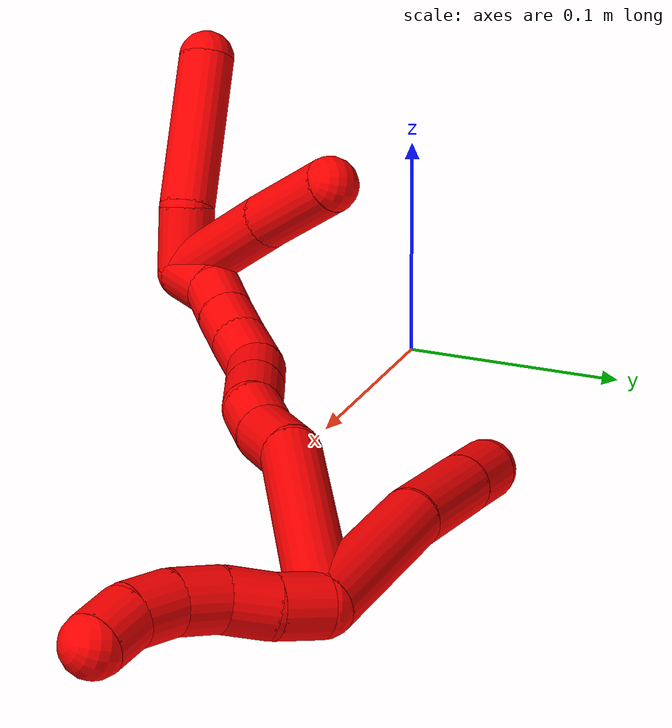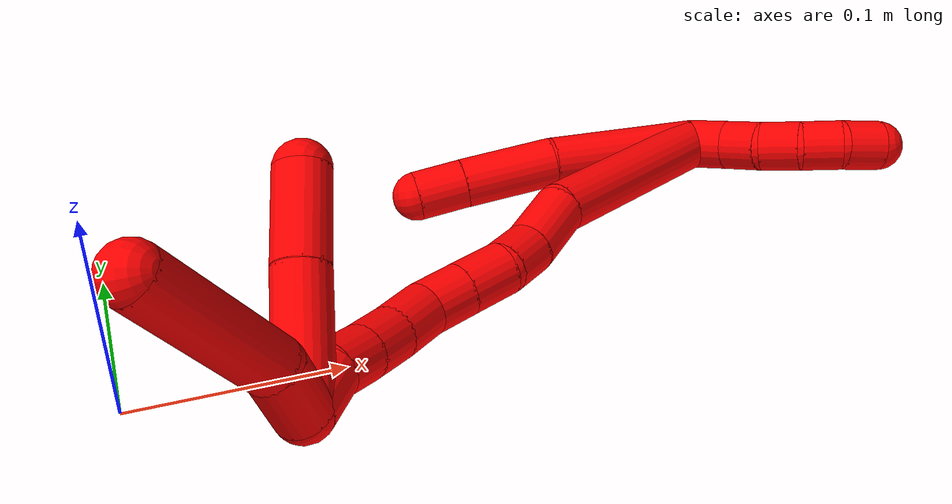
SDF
<sdf version="1.7">
 <world name="default">
  <model name="2">
   <static>0</static>
   <link name="2">
    <collision name="collision-cylinder-e_1_2_8">
     <pose>-0.023614 -0.005495 -0.030131 2.96122 -0.656796 -2.62274</pose>
     <geometry><cylinder><radius>0.0125</radius><length>0.077349</length></cylinder></geometry>
     <surface>
      <friction><ode><mu>1.16</mu><mu2>1.16</mu2><slip1>0</slip1><slip2>0</slip2></ode></friction>
      <contact><ode><kp>1e+06</kp><kd>1</kd><max_vel>0</max_vel><min_depth>0.001</min_depth></ode></contact>
     </surface>
    </collision>
    <visual name="visual-cylinder-e_1_2_8">
     <pose>-0.023614 -0.005495 -0.030131 2.96122 -0.656796 -2.62274</pose>
     <geometry><cylinder><radius>0.0125</radius><length>0.077349</length></cylinder></geometry>
     <material><ambient>1 0 0 1</ambient></material>
    </visual>
    <collision name="collision-cylinder-e_2_8_9">
     <pose>-0.059513 -0.016392 -0.079952 2.87379 -0.541668 -2.23818</pose>
     <geometry><cylinder><radius>0.0125</radius><length>0.047656</length></cylinder></geometry>
     <surface>
      <friction><ode><mu>1.16</mu><mu2>1.16</mu2><slip1>0</slip1><slip2>0</slip2></ode></friction>
      <contact><ode><kp>1e+06</kp><kd>1</kd><max_vel>0</max_vel><min_depth>0.001</min_depth></ode></contact>
     </surface>
    </collision>
    <visual name="visual-cylinder-e_2_8_9">
     <pose>-0.059513 -0.016392 -0.079952 2.87379 -0.541668 -2.23818</pose>
     <geometry><cylinder><radius>0.0125</radius><length>0.047656</length></cylinder></geometry>
     <material><ambient>1 0 0 1</ambient></material>
    </visual>
    <collision name="collision-cylinder-e_3_9_6">
     <pose>-0.078136 -0.024926 -0.109947 2.84661 -0.531881 -2.14295</pose>
     <geometry><cylinder><radius>0.0125</radius><length>0.024996</length></cylinder></geometry>
     <surface>
      <friction><ode><mu>1.16</mu><mu2>1.16</mu2><slip1>0</slip1><slip2>0</slip2></ode></friction>
      <contact><ode><kp>1e+06</kp><kd>1</kd><max_vel>0</max_vel><min_depth>0.001</min_depth></ode></contact>
     </surface>
    </collision>
    <visual name="visual-cylinder-e_3_9_6">
     <pose>-0.078136 -0.024926 -0.109947 2.84661 -0.531881 -2.14295</pose>
     <geometry><cylinder><radius>0.0125</radius><length>0.024996</length></cylinder></geometry>
     <material><ambient>1 0 0 1</ambient></material>
    </visual>
    <collision name="collision-cylinder-e_1_2_10">
     <pose>0.000204 -0.001841 0.009827 0.185155 0.020434 0.001897</pose>
     <geometry><cylinder><radius>0.0125</radius><length>0.02</length></cylinder></geometry>
     <surface>
      <friction><ode><mu>1.16</mu><mu2>1.16</mu2><slip1>0</slip1><slip2>0</slip2></ode></friction>
      <contact><ode><kp>1e+06</kp><kd>1</kd><max_vel>0</max_vel><min_depth>0.001</min_depth></ode></contact>
     </surface>
    </collision>
    <visual name="visual-cylinder-e_1_2_10">
     <pose>0.000204 -0.001841 0.009827 0.185155 0.020434 0.001897</pose>
     <geometry><cylinder><radius>0.0125</radius><length>0.02</length></cylinder></geometry>
     <material><ambient>1 0 0 1</ambient></material>
    </visual>
    <collision name="collision-cylinder-e_2_10_11">
     <pose>-0.001303 -0.005932 0.029246 0.230441 -0.171982 -0.019953</pose>
     <geometry><cylinder><radius>0.0125</radius><length>0.02</length></cylinder></geometry>
     <surface>
      <friction><ode><mu>1.16</mu><mu2>1.16</mu2><slip1>0</slip1><slip2>0</slip2></ode></friction>
      <contact><ode><kp>1e+06</kp><kd>1</kd><max_vel>0</max_vel><min_depth>0.001</min_depth></ode></contact>
     </surface>
    </collision>
    <visual name="visual-cylinder-e_2_10_11">
     <pose>-0.001303 -0.005932 0.029246 0.230441 -0.171982 -0.019953</pose>
     <geometry><cylinder><radius>0.0125</radius><length>0.02</length></cylinder></geometry>
     <material><ambient>1 0 0 1</ambient></material>
    </visual>
    <collision name="collision-cylinder-e_3_11_12">
     <pose>-0.002114 -0.009442 0.048718 0.126811 0.090165 0.005729</pose>
     <geometry><cylinder><radius>0.0125</radius><length>0.02</length></cylinder></geometry>
     <surface>
      <friction><ode><mu>1.16</mu><mu2>1.16</mu2><slip1>0</slip1><slip2>0</slip2></ode></friction>
      <contact><ode><kp>1e+06</kp><kd>1</kd><max_vel>0</max_vel><min_depth>0.001</min_depth></ode></contact>
     </surface>
    </collision>
    <visual name="visual-cylinder-e_3_11_12">
     <pose>-0.002114 -0.009442 0.048718 0.126811 0.090165 0.005729</pose>
     <geometry><cylinder><radius>0.0125</radius><length>0.02</length></cylinder></geometry>
     <material><ambient>1 0 0 1</ambient></material>
    </visual>
    <collision name="collision-cylinder-e_4_12_13">
     <pose>0.00209 -0.011165 0.068024 0.049219 0.336625 0.008365</pose>
     <geometry><cylinder><radius>0.0125</radius><length>0.02</length></cylinder></geometry>
     <surface>
      <friction><ode><mu>1.16</mu><mu2>1.16</mu2><slip1>0</slip1><slip2>0</slip2></ode></friction>
      <contact><ode><kp>1e+06</kp><kd>1</kd><max_vel>0</max_vel><min_depth>0.001</min_depth></ode></contact>
     </surface>
    </collision>
    <visual name="visual-cylinder-e_4_12_13">
     <pose>0.00209 -0.011165 0.068024 0.049219 0.336625 0.008365</pose>
     <geometry><cylinder><radius>0.0125</radius><length>0.02</length></cylinder></geometry>
     <material><ambient>1 0 0 1</ambient></material>
    </visual>
    <collision name="collision-cylinder-e_5_13_5">
     <pose>0.011424 -0.011638 0.085428 0.000984 0.647378 0.00033</pose>
     <geometry><cylinder><radius>0.0125</radius><length>0.02</length></cylinder></geometry>
     <surface>
      <friction><ode><mu>1.16</mu><mu2>1.16</mu2><slip1>0</slip1><slip2>0</slip2></ode></friction>
      <contact><ode><kp>1e+06</kp><kd>1</kd><max_vel>0</max_vel><min_depth>0.001</min_depth></ode></contact>
     </surface>
    </collision>
    <visual name="visual-cylinder-e_5_13_5">
     <pose>0.011424 -0.011638 0.085428 0.000984 0.647378 0.00033</pose>
     <geometry><cylinder><radius>0.0125</radius><length>0.02</length></cylinder></geometry>
     <material><ambient>1 0 0 1</ambient></material>
    </visual>
    <collision name="collision-cylinder-e_1_2_14">
     <pose>-0.04566 -0.023397 -0.019312 2.26084 -0.984341 -1.69954</pose>
     <geometry><cylinder><radius>0.0125</radius><length>0.10964</length></cylinder></geometry>
     <surface>
      <friction><ode><mu>1.16</mu><mu2>1.16</mu2><slip1>0</slip1><slip2>0</slip2></ode></friction>
      <contact><ode><kp>1e+06</kp><kd>1</kd><max_vel>0</max_vel><min_depth>0.001</min_depth></ode></contact>
     </surface>
    </collision>
    <visual name="visual-cylinder-e_1_2_14">
     <pose>-0.04566 -0.023397 -0.019312 2.26084 -0.984341 -1.69954</pose>
     <geometry><cylinder><radius>0.0125</radius><length>0.10964</length></cylinder></geometry>
     <material><ambient>1 0 0 1</ambient></material>
    </visual>
    <collision name="collision-cylinder-e_2_14_15">
     <pose>-0.102364 -0.057728 -0.042105 1.87899 -0.766322 -1.00773</pose>
     <geometry><cylinder><radius>0.0125</radius><length>0.031851</length></cylinder></geometry>
     <surface>
      <friction><ode><mu>1.16</mu><mu2>1.16</mu2><slip1>0</slip1><slip2>0</slip2></ode></friction>
      <contact><ode><kp>1e+06</kp><kd>1</kd><max_vel>0</max_vel><min_depth>0.001</min_depth></ode></contact>
     </surface>
    </collision>
    <visual name="visual-cylinder-e_2_14_15">
     <pose>-0.102364 -0.057728 -0.042105 1.87899 -0.766322 -1.00773</pose>
     <geometry><cylinder><radius>0.0125</radius><length>0.031851</length></cylinder></geometry>
     <material><ambient>1 0 0 1</ambient></material>
    </visual>
    <collision name="collision-cylinder-e_3_15_16">
     <pose>-0.122477 -0.07432 -0.048014 1.97612 -0.974259 -1.35398</pose>
     <geometry><cylinder><radius>0.0125</radius><length>0.021925</length></cylinder></geometry>
     <surface>
      <friction><ode><mu>1.16</mu><mu2>1.16</mu2><slip1>0</slip1><slip2>0</slip2></ode></friction>
      <contact><ode><kp>1e+06</kp><kd>1</kd><max_vel>0</max_vel><min_depth>0.001</min_depth></ode></contact>
     </surface>
    </collision>
    <visual name="visual-cylinder-e_3_15_16">
     <pose>-0.122477 -0.07432 -0.048014 1.97612 -0.974259 -1.35398</pose>
     <geometry><cylinder><radius>0.0125</radius><length>0.021925</length></cylinder></geometry>
     <material><ambient>1 0 0 1</ambient></material>
    </visual>
    <collision name="collision-cylinder-e_4_16_17">
     <pose>-0.140353 -0.085314 -0.056483 2.41822 -0.829676 -1.72213</pose>
     <geometry><cylinder><radius>0.0125</radius><length>0.023874</length></cylinder></geometry>
     <surface>
      <friction><ode><mu>1.16</mu><mu2>1.16</mu2><slip1>0</slip1><slip2>0</slip2></ode></friction>
      <contact><ode><kp>1e+06</kp><kd>1</kd><max_vel>0</max_vel><min_depth>0.001</min_depth></ode></contact>
     </surface>
    </collision>
    <visual name="visual-cylinder-e_4_16_17">
     <pose>-0.140353 -0.085314 -0.056483 2.41822 -0.829676 -1.72213</pose>
     <geometry><cylinder><radius>0.0125</radius><length>0.023874</length></cylinder></geometry>
     <material><ambient>1 0 0 1</ambient></material>
    </visual>
    <collision name="collision-cylinder-e_5_17_18">
     <pose>-0.156905 -0.095378 -0.067707 2.40194 -0.834767 -1.70481</pose>
     <geometry><cylinder><radius>0.0125</radius><length>0.020903</length></cylinder></geometry>
     <surface>
      <friction><ode><mu>1.16</mu><mu2>1.16</mu2><slip1>0</slip1><slip2>0</slip2></ode></friction>
      <contact><ode><kp>1e+06</kp><kd>1</kd><max_vel>0</max_vel><min_depth>0.001</min_depth></ode></contact>
     </surface>
    </collision>
    <visual name="visual-cylinder-e_5_17_18">
     <pose>-0.156905 -0.095378 -0.067707 2.40194 -0.834767 -1.70481</pose>
     <geometry><cylinder><radius>0.0125</radius><length>0.020903</length></cylinder></geometry>
     <material><ambient>1 0 0 1</ambient></material>
    </visual>
    <collision name="collision-cylinder-e_6_18_19">
     <pose>-0.174939 -0.106177 -0.075015 1.90752 -1.01213 -1.32632</pose>
     <geometry><cylinder><radius>0.0125</radius><length>0.024267</length></cylinder></geometry>
     <surface>
      <friction><ode><mu>1.16</mu><mu2>1.16</mu2><slip1>0</slip1><slip2>0</slip2></ode></friction>
      <contact><ode><kp>1e+06</kp><kd>1</kd><max_vel>0</max_vel><min_depth>0.001</min_depth></ode></contact>
     </surface>
    </collision>
    <visual name="visual-cylinder-e_6_18_19">
     <pose>-0.174939 -0.106177 -0.075015 1.90752 -1.01213 -1.32632</pose>
     <geometry><cylinder><radius>0.0125</radius><length>0.024267</length></cylinder></geometry>
     <material><ambient>1 0 0 1</ambient></material>
    </visual>
    <collision name="collision-cylinder-e_7_19_20">
     <pose>-0.194695 -0.116873 -0.078501 1.85693 -1.09975 -1.37272</pose>
     <geometry><cylinder><radius>0.0125</radius><length>0.021248</length></cylinder></geometry>
     <surface>
      <friction><ode><mu>1.16</mu><mu2>1.16</mu2><slip1>0</slip1><slip2>0</slip2></ode></friction>
      <contact><ode><kp>1e+06</kp><kd>1</kd><max_vel>0</max_vel><min_depth>0.001</min_depth></ode></contact>
     </surface>
    </collision>
    <visual name="visual-cylinder-e_7_19_20">
     <pose>-0.194695 -0.116873 -0.078501 1.85693 -1.09975 -1.37272</pose>
     <geometry><cylinder><radius>0.0125</radius><length>0.021248</length></cylinder></geometry>
     <material><ambient>1 0 0 1</ambient></material>
    </visual>
    <collision name="collision-cylinder-e_8_20_21">
     <pose>-0.213567 -0.125652 -0.081261 1.89569 -1.13466 -1.45119</pose>
     <geometry><cylinder><radius>0.0125</radius><length>0.020754</length></cylinder></geometry>
     <surface>
      <friction><ode><mu>1.16</mu><mu2>1.16</mu2><slip1>0</slip1><slip2>0</slip2></ode></friction>
      <contact><ode><kp>1e+06</kp><kd>1</kd><max_vel>0</max_vel><min_depth>0.001</min_depth></ode></contact>
     </surface>
    </collision>
    <visual name="visual-cylinder-e_8_20_21">
     <pose>-0.213567 -0.125652 -0.081261 1.89569 -1.13466 -1.45119</pose>
     <geometry><cylinder><radius>0.0125</radius><length>0.020754</length></cylinder></geometry>
     <material><ambient>1 0 0 1</ambient></material>
    </visual>
    <collision name="collision-cylinder-e_9_21_1">
     <pose>-0.232506 -0.138299 -0.08244 1.5449 -0.84297 -0.8238</pose>
     <geometry><cylinder><radius>0.0125</radius><length>0.025539</length></cylinder></geometry>
     <surface>
      <friction><ode><mu>1.16</mu><mu2>1.16</mu2><slip1>0</slip1><slip2>0</slip2></ode></friction>
      <contact><ode><kp>1e+06</kp><kd>1</kd><max_vel>0</max_vel><min_depth>0.001</min_depth></ode></contact>
     </surface>
    </collision>
    <visual name="visual-cylinder-e_9_21_1">
     <pose>-0.232506 -0.138299 -0.08244 1.5449 -0.84297 -0.8238</pose>
     <geometry><cylinder><radius>0.0125</radius><length>0.025539</length></cylinder></geometry>
     <material><ambient>1 0 0 1</ambient></material>
    </visual>
    <collision name="collision-cylinder-e_1_1_22">
     <pose>-0.238665 -0.118224 -0.084817 -1.66144 0.117143 -0.128243</pose>
     <geometry><cylinder><radius>0.0125</radius><length>0.057765</length></cylinder></geometry>
     <surface>
      <friction><ode><mu>1.16</mu><mu2>1.16</mu2><slip1>0</slip1><slip2>0</slip2></ode></friction>
      <contact><ode><kp>1e+06</kp><kd>1</kd><max_vel>0</max_vel><min_depth>0.001</min_depth></ode></contact>
     </surface>
    </collision>
    <visual name="visual-cylinder-e_1_1_22">
     <pose>-0.238665 -0.118224 -0.084817 -1.66144 0.117143 -0.128243</pose>
     <geometry><cylinder><radius>0.0125</radius><length>0.057765</length></cylinder></geometry>
     <material><ambient>1 0 0 1</ambient></material>
    </visual>
    <collision name="collision-cylinder-e_2_22_4">
     <pose>-0.23189 -0.068896 -0.089244 -1.65875 0.161663 -0.176473</pose>
     <geometry><cylinder><radius>0.0125</radius><length>0.042235</length></cylinder></geometry>
     <surface>
      <friction><ode><mu>1.16</mu><mu2>1.16</mu2><slip1>0</slip1><slip2>0</slip2></ode></friction>
      <contact><ode><kp>1e+06</kp><kd>1</kd><max_vel>0</max_vel><min_depth>0.001</min_depth></ode></contact>
     </surface>
    </collision>
    <visual name="visual-cylinder-e_2_22_4">
     <pose>-0.23189 -0.068896 -0.089244 -1.65875 0.161663 -0.176473</pose>
     <geometry><cylinder><radius>0.0125</radius><length>0.042235</length></cylinder></geometry>
     <material><ambient>1 0 0 1</ambient></material>
    </visual>
    <collision name="collision-cylinder-e_1_1_23">
     <pose>-0.254071 -0.139166 -0.080326 -1.32732 -0.992266 0.800831</pose>
     <geometry><cylinder><radius>0.0125</radius><length>0.028737</length></cylinder></geometry>
     <surface>
      <friction><ode><mu>1.16</mu><mu2>1.16</mu2><slip1>0</slip1><slip2>0</slip2></ode></friction>
      <contact><ode><kp>1e+06</kp><kd>1</kd><max_vel>0</max_vel><min_depth>0.001</min_depth></ode></contact>
     </surface>
    </collision>
    <visual name="visual-cylinder-e_1_1_23">
     <pose>-0.254071 -0.139166 -0.080326 -1.32732 -0.992266 0.800831</pose>
     <geometry><cylinder><radius>0.0125</radius><length>0.028737</length></cylinder></geometry>
     <material><ambient>1 0 0 1</ambient></material>
    </visual>
    <collision name="collision-cylinder-e_2_23_3">
     <pose>-0.299077 -0.118639 -0.082403 -1.86935 -1.18223 1.4753</pose>
     <geometry><cylinder><radius>0.0125</radius><length>0.071263</length></cylinder></geometry>
     <surface>
      <friction><ode><mu>1.16</mu><mu2>1.16</mu2><slip1>0</slip1><slip2>0</slip2></ode></friction>
      <contact><ode><kp>1e+06</kp><kd>1</kd><max_vel>0</max_vel><min_depth>0.001</min_depth></ode></contact>
     </surface>
    </collision>
    <visual name="visual-cylinder-e_2_23_3">
     <pose>-0.299077 -0.118639 -0.082403 -1.86935 -1.18223 1.4753</pose>
     <geometry><cylinder><radius>0.0125</radius><length>0.071263</length></cylinder></geometry>
     <material><ambient>1 0 0 1</ambient></material>
    </visual>
    <collision name="collision-sphere-3">
     <pose>-0.332052 -0.105737 -0.086373 0 -0 0</pose>
     <geometry><sphere><radius>0.0125</radius></sphere></geometry>
     <surface>
      <friction><ode><mu>1.16</mu><mu2>1.16</mu2><slip1>0</slip1><slip2>0</slip2></ode></friction>
      <contact><ode><kp>1e+06</kp><kd>1</kd><max_vel>0</max_vel><min_depth>0.001</min_depth></ode></contact>
     </surface>
    </collision>
    <visual name="visual-sphere-3">
     <pose>-0.332052 -0.105737 -0.086373 0 -0 0</pose>
     <geometry><sphere><radius>0.0125</radius></sphere></geometry>
     <material><ambient>1 0 0 1</ambient></material>
    </visual>
    <collision name="collision-sphere-23">
     <pose>-0.266101 -0.131541 -0.078432 0 -0 0</pose>
     <geometry><sphere><radius>0.0125</radius></sphere></geometry>
     <surface>
      <friction><ode><mu>1.16</mu><mu2>1.16</mu2><slip1>0</slip1><slip2>0</slip2></ode></friction>
      <contact><ode><kp>1e+06</kp><kd>1</kd><max_vel>0</max_vel><min_depth>0.001</min_depth></ode></contact>
     </surface>
    </collision>
    <visual name="visual-sphere-23">
     <pose>-0.266101 -0.131541 -0.078432 0 -0 0</pose>
     <geometry><sphere><radius>0.0125</radius></sphere></geometry>
     <material><ambient>1 0 0 1</ambient></material>
    </visual>
    <collision name="collision-sphere-4">
     <pose>-0.228491 -0.048134 -0.091075 0 -0 0</pose>
     <geometry><sphere><radius>0.0125</radius></sphere></geometry>
     <surface>
      <friction><ode><mu>1.16</mu><mu2>1.16</mu2><slip1>0</slip1><slip2>0</slip2></ode></friction>
      <contact><ode><kp>1e+06</kp><kd>1</kd><max_vel>0</max_vel><min_depth>0.001</min_depth></ode></contact>
     </surface>
    </collision>
    <visual name="visual-sphere-4">
     <pose>-0.228491 -0.048134 -0.091075 0 -0 0</pose>
     <geometry><sphere><radius>0.0125</radius></sphere></geometry>
     <material><ambient>1 0 0 1</ambient></material>
    </visual>
    <collision name="collision-sphere-22">
     <pose>-0.235289 -0.089657 -0.087413 0 -0 0</pose>
     <geometry><sphere><radius>0.0125</radius></sphere></geometry>
     <surface>
      <friction><ode><mu>1.16</mu><mu2>1.16</mu2><slip1>0</slip1><slip2>0</slip2></ode></friction>
      <contact><ode><kp>1e+06</kp><kd>1</kd><max_vel>0</max_vel><min_depth>0.001</min_depth></ode></contact>
     </surface>
    </collision>
    <visual name="visual-sphere-22">
     <pose>-0.235289 -0.089657 -0.087413 0 -0 0</pose>
     <geometry><sphere><radius>0.0125</radius></sphere></geometry>
     <material><ambient>1 0 0 1</ambient></material>
    </visual>
    <collision name="collision-sphere-1">
     <pose>-0.242041 -0.146791 -0.08222 0 -0 0</pose>
     <geometry><sphere><radius>0.0125</radius></sphere></geometry>
     <surface>
      <friction><ode><mu>1.16</mu><mu2>1.16</mu2><slip1>0</slip1><slip2>0</slip2></ode></friction>
      <contact><ode><kp>1e+06</kp><kd>1</kd><max_vel>0</max_vel><min_depth>0.001</min_depth></ode></contact>
     </surface>
    </collision>
    <visual name="visual-sphere-1">
     <pose>-0.242041 -0.146791 -0.08222 0 -0 0</pose>
     <geometry><sphere><radius>0.0125</radius></sphere></geometry>
     <material><ambient>1 0 0 1</ambient></material>
    </visual>
    <collision name="collision-sphere-21">
     <pose>-0.222972 -0.129806 -0.08266 0 -0 0</pose>
     <geometry><sphere><radius>0.0125</radius></sphere></geometry>
     <surface>
      <friction><ode><mu>1.16</mu><mu2>1.16</mu2><slip1>0</slip1><slip2>0</slip2></ode></friction>
      <contact><ode><kp>1e+06</kp><kd>1</kd><max_vel>0</max_vel><min_depth>0.001</min_depth></ode></contact>
     </surface>
    </collision>
    <visual name="visual-sphere-21">
     <pose>-0.222972 -0.129806 -0.08266 0 -0 0</pose>
     <geometry><sphere><radius>0.0125</radius></sphere></geometry>
     <material><ambient>1 0 0 1</ambient></material>
    </visual>
    <collision name="collision-sphere-11">
     <pose>-0.003014 -0.008182 0.038838 0 -0 0</pose>
     <geometry><sphere><radius>0.0125</radius></sphere></geometry>
     <surface>
      <friction><ode><mu>1.16</mu><mu2>1.16</mu2><slip1>0</slip1><slip2>0</slip2></ode></friction>
      <contact><ode><kp>1e+06</kp><kd>1</kd><max_vel>0</max_vel><min_depth>0.001</min_depth></ode></contact>
     </surface>
    </collision>
    <visual name="visual-sphere-11">
     <pose>-0.003014 -0.008182 0.038838 0 -0 0</pose>
     <geometry><sphere><radius>0.0125</radius></sphere></geometry>
     <material><ambient>1 0 0 1</ambient></material>
    </visual>
    <collision name="collision-sphere-10">
     <pose>0.000409 -0.003681 0.019654 0 -0 0</pose>
     <geometry><sphere><radius>0.0125</radius></sphere></geometry>
     <surface>
      <friction><ode><mu>1.16</mu><mu2>1.16</mu2><slip1>0</slip1><slip2>0</slip2></ode></friction>
      <contact><ode><kp>1e+06</kp><kd>1</kd><max_vel>0</max_vel><min_depth>0.001</min_depth></ode></contact>
     </surface>
    </collision>
    <visual name="visual-sphere-10">
     <pose>0.000409 -0.003681 0.019654 0 -0 0</pose>
     <geometry><sphere><radius>0.0125</radius></sphere></geometry>
     <material><ambient>1 0 0 1</ambient></material>
    </visual>
    <collision name="collision-sphere-6">
     <pose>-0.084474 -0.028057 -0.120253 0 -0 0</pose>
     <geometry><sphere><radius>0.0125</radius></sphere></geometry>
     <surface>
      <friction><ode><mu>1.16</mu><mu2>1.16</mu2><slip1>0</slip1><slip2>0</slip2></ode></friction>
      <contact><ode><kp>1e+06</kp><kd>1</kd><max_vel>0</max_vel><min_depth>0.001</min_depth></ode></contact>
     </surface>
    </collision>
    <visual name="visual-sphere-6">
     <pose>-0.084474 -0.028057 -0.120253 0 -0 0</pose>
     <geometry><sphere><radius>0.0125</radius></sphere></geometry>
     <material><ambient>1 0 0 1</ambient></material>
    </visual>
    <collision name="collision-sphere-9">
     <pose>-0.071797 -0.021795 -0.099641 0 -0 0</pose>
     <geometry><sphere><radius>0.0125</radius></sphere></geometry>
     <surface>
      <friction><ode><mu>1.16</mu><mu2>1.16</mu2><slip1>0</slip1><slip2>0</slip2></ode></friction>
      <contact><ode><kp>1e+06</kp><kd>1</kd><max_vel>0</max_vel><min_depth>0.001</min_depth></ode></contact>
     </surface>
    </collision>
    <visual name="visual-sphere-9">
     <pose>-0.071797 -0.021795 -0.099641 0 -0 0</pose>
     <geometry><sphere><radius>0.0125</radius></sphere></geometry>
     <material><ambient>1 0 0 1</ambient></material>
    </visual>
    <collision name="collision-sphere-2">
     <geometry><sphere><radius>0.0125</radius></sphere></geometry>
     <surface>
      <friction><ode><mu>1.16</mu><mu2>1.16</mu2><slip1>0</slip1><slip2>0</slip2></ode></friction>
      <contact><ode><kp>1e+06</kp><kd>1</kd><max_vel>0</max_vel><min_depth>0.001</min_depth></ode></contact>
     </surface>
    </collision>
    <visual name="visual-sphere-2">
     <geometry><sphere><radius>0.0125</radius></sphere></geometry>
     <material><ambient>1 0 0 1</ambient></material>
    </visual>
    <collision name="collision-sphere-19">
     <pose>-0.185228 -0.112247 -0.07714 0 -0 0</pose>
     <geometry><sphere><radius>0.0125</radius></sphere></geometry>
     <surface>
      <friction><ode><mu>1.16</mu><mu2>1.16</mu2><slip1>0</slip1><slip2>0</slip2></ode></friction>
      <contact><ode><kp>1e+06</kp><kd>1</kd><max_vel>0</max_vel><min_depth>0.001</min_depth></ode></contact>
     </surface>
    </collision>
    <visual name="visual-sphere-19">
     <pose>-0.185228 -0.112247 -0.07714 0 -0 0</pose>
     <geometry><sphere><radius>0.0125</radius></sphere></geometry>
     <material><ambient>1 0 0 1</ambient></material>
    </visual>
    <collision name="collision-sphere-8">
     <pose>-0.047228 -0.010989 -0.060263 0 -0 0</pose>
     <geometry><sphere><radius>0.0125</radius></sphere></geometry>
     <surface>
      <friction><ode><mu>1.16</mu><mu2>1.16</mu2><slip1>0</slip1><slip2>0</slip2></ode></friction>
      <contact><ode><kp>1e+06</kp><kd>1</kd><max_vel>0</max_vel><min_depth>0.001</min_depth></ode></contact>
     </surface>
    </collision>
    <visual name="visual-sphere-8">
     <pose>-0.047228 -0.010989 -0.060263 0 -0 0</pose>
     <geometry><sphere><radius>0.0125</radius></sphere></geometry>
     <material><ambient>1 0 0 1</ambient></material>
    </visual>
    <collision name="collision-sphere-12">
     <pose>-0.001213 -0.010701 0.058597 0 -0 0</pose>
     <geometry><sphere><radius>0.0125</radius></sphere></geometry>
     <surface>
      <friction><ode><mu>1.16</mu><mu2>1.16</mu2><slip1>0</slip1><slip2>0</slip2></ode></friction>
      <contact><ode><kp>1e+06</kp><kd>1</kd><max_vel>0</max_vel><min_depth>0.001</min_depth></ode></contact>
     </surface>
    </collision>
    <visual name="visual-sphere-12">
     <pose>-0.001213 -0.010701 0.058597 0 -0 0</pose>
     <geometry><sphere><radius>0.0125</radius></sphere></geometry>
     <material><ambient>1 0 0 1</ambient></material>
    </visual>
    <collision name="collision-sphere-13">
     <pose>0.005393 -0.01163 0.077452 0 -0 0</pose>
     <geometry><sphere><radius>0.0125</radius></sphere></geometry>
     <surface>
      <friction><ode><mu>1.16</mu><mu2>1.16</mu2><slip1>0</slip1><slip2>0</slip2></ode></friction>
      <contact><ode><kp>1e+06</kp><kd>1</kd><max_vel>0</max_vel><min_depth>0.001</min_depth></ode></contact>
     </surface>
    </collision>
    <visual name="visual-sphere-13">
     <pose>0.005393 -0.01163 0.077452 0 -0 0</pose>
     <geometry><sphere><radius>0.0125</radius></sphere></geometry>
     <material><ambient>1 0 0 1</ambient></material>
    </visual>
    <collision name="collision-sphere-5">
     <pose>0.017455 -0.011646 0.093405 0 -0 0</pose>
     <geometry><sphere><radius>0.0125</radius></sphere></geometry>
     <surface>
      <friction><ode><mu>1.16</mu><mu2>1.16</mu2><slip1>0</slip1><slip2>0</slip2></ode></friction>
      <contact><ode><kp>1e+06</kp><kd>1</kd><max_vel>0</max_vel><min_depth>0.001</min_depth></ode></contact>
     </surface>
    </collision>
    <visual name="visual-sphere-5">
     <pose>0.017455 -0.011646 0.093405 0 -0 0</pose>
     <geometry><sphere><radius>0.0125</radius></sphere></geometry>
     <material><ambient>1 0 0 1</ambient></material>
    </visual>
    <collision name="collision-sphere-14">
     <pose>-0.09132 -0.046794 -0.038625 0 -0 0</pose>
     <geometry><sphere><radius>0.0125</radius></sphere></geometry>
     <surface>
      <friction><ode><mu>1.16</mu><mu2>1.16</mu2><slip1>0</slip1><slip2>0</slip2></ode></friction>
      <contact><ode><kp>1e+06</kp><kd>1</kd><max_vel>0</max_vel><min_depth>0.001</min_depth></ode></contact>
     </surface>
    </collision>
    <visual name="visual-sphere-14">
     <pose>-0.09132 -0.046794 -0.038625 0 -0 0</pose>
     <geometry><sphere><radius>0.0125</radius></sphere></geometry>
     <material><ambient>1 0 0 1</ambient></material>
    </visual>
    <collision name="collision-sphere-15">
     <pose>-0.113408 -0.068661 -0.045586 0 -0 0</pose>
     <geometry><sphere><radius>0.0125</radius></sphere></geometry>
     <surface>
      <friction><ode><mu>1.16</mu><mu2>1.16</mu2><slip1>0</slip1><slip2>0</slip2></ode></friction>
      <contact><ode><kp>1e+06</kp><kd>1</kd><max_vel>0</max_vel><min_depth>0.001</min_depth></ode></contact>
     </surface>
    </collision>
    <visual name="visual-sphere-15">
     <pose>-0.113408 -0.068661 -0.045586 0 -0 0</pose>
     <geometry><sphere><radius>0.0125</radius></sphere></geometry>
     <material><ambient>1 0 0 1</ambient></material>
    </visual>
    <collision name="collision-sphere-16">
     <pose>-0.131547 -0.07998 -0.050442 0 -0 0</pose>
     <geometry><sphere><radius>0.0125</radius></sphere></geometry>
     <surface>
      <friction><ode><mu>1.16</mu><mu2>1.16</mu2><slip1>0</slip1><slip2>0</slip2></ode></friction>
      <contact><ode><kp>1e+06</kp><kd>1</kd><max_vel>0</max_vel><min_depth>0.001</min_depth></ode></contact>
     </surface>
    </collision>
    <visual name="visual-sphere-16">
     <pose>-0.131547 -0.07998 -0.050442 0 -0 0</pose>
     <geometry><sphere><radius>0.0125</radius></sphere></geometry>
     <material><ambient>1 0 0 1</ambient></material>
    </visual>
    <collision name="collision-sphere-17">
     <pose>-0.149159 -0.090648 -0.062524 0 -0 0</pose>
     <geometry><sphere><radius>0.0125</radius></sphere></geometry>
     <surface>
      <friction><ode><mu>1.16</mu><mu2>1.16</mu2><slip1>0</slip1><slip2>0</slip2></ode></friction>
      <contact><ode><kp>1e+06</kp><kd>1</kd><max_vel>0</max_vel><min_depth>0.001</min_depth></ode></contact>
     </surface>
    </collision>
    <visual name="visual-sphere-17">
     <pose>-0.149159 -0.090648 -0.062524 0 -0 0</pose>
     <geometry><sphere><radius>0.0125</radius></sphere></geometry>
     <material><ambient>1 0 0 1</ambient></material>
    </visual>
    <collision name="collision-sphere-18">
     <pose>-0.164651 -0.100107 -0.07289 0 -0 0</pose>
     <geometry><sphere><radius>0.0125</radius></sphere></geometry>
     <surface>
      <friction><ode><mu>1.16</mu><mu2>1.16</mu2><slip1>0</slip1><slip2>0</slip2></ode></friction>
      <contact><ode><kp>1e+06</kp><kd>1</kd><max_vel>0</max_vel><min_depth>0.001</min_depth></ode></contact>
     </surface>
    </collision>
    <visual name="visual-sphere-18">
     <pose>-0.164651 -0.100107 -0.07289 0 -0 0</pose>
     <geometry><sphere><radius>0.0125</radius></sphere></geometry>
     <material><ambient>1 0 0 1</ambient></material>
    </visual>
    <collision name="collision-sphere-20">
     <pose>-0.204161 -0.121498 -0.079862 0 -0 0</pose>
     <geometry><sphere><radius>0.0125</radius></sphere></geometry>
     <surface>
      <friction><ode><mu>1.16</mu><mu2>1.16</mu2><slip1>0</slip1><slip2>0</slip2></ode></friction>
      <contact><ode><kp>1e+06</kp><kd>1</kd><max_vel>0</max_vel><min_depth>0.001</min_depth></ode></contact>
     </surface>
    </collision>
    <visual name="visual-sphere-20">
     <pose>-0.204161 -0.121498 -0.079862 0 -0 0</pose>
     <geometry><sphere><radius>0.0125</radius></sphere></geometry>
     <material><ambient>1 0 0 1</ambient></material>
    </visual>
    <inertial>
     <pose>-0.126585 -0.061448 -0.047291 0 -0 0</pose>
     <mass>0.75</mass>
     <inertia>
      <ixx>-0.000123</ixx>
      <ixy>0</ixy>
      <ixz>0</ixz>
      <iyy>8.4e-05</iyy>
      <iyz>0</iyz>
      <izz>0.000188</izz>
     </inertia>
    </inertial>
   </link>
   <pose>0.308579 0.088947 0.029206 1.11972 0.678844 0.651851</pose>
  </model>
 </world>
</sdf>
